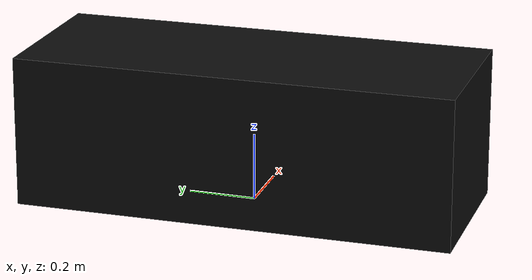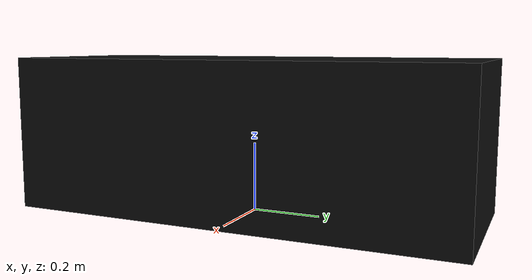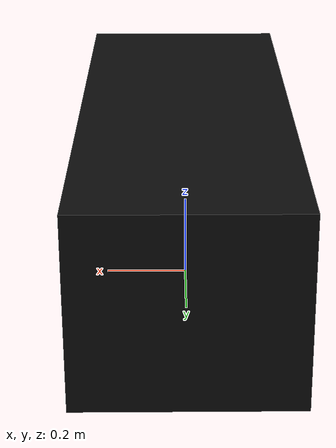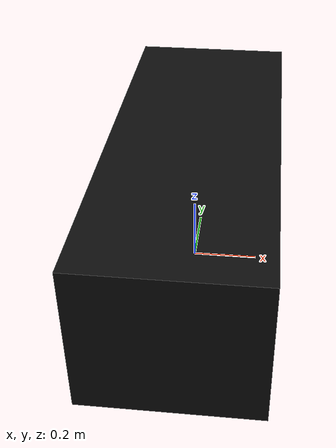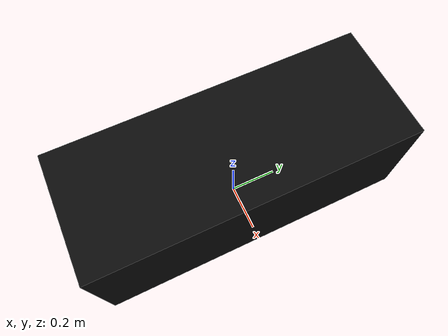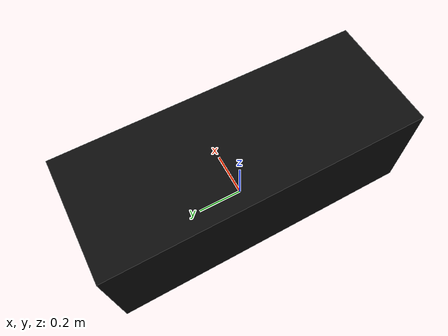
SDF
<?xml version="1.0"?>
<sdf version="1.6">
  <model name="robotics_testlab_B/pico_case">
    <link name="1_link">
      <collision name="1_col">
        <geometry>
          <box>
            <size>0.51 1.31 0.45</size>
          </box>
        </geometry>
      </collision>
      <visual name="1_vis">
        <geometry>
          <box>
            <size>0.51 1.31 0.45</size>
          </box>
        </geometry>
        <material>
          <ambient>0.05 0.05 0.05 1</ambient>
        </material>
      </visual>
      <pose>0 0 0.225 0 0 0</pose>
    </link>
    <static>true</static>
  </model>
</sdf>
